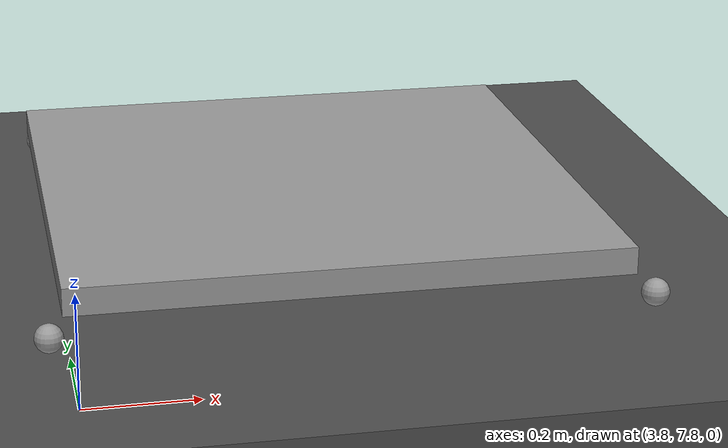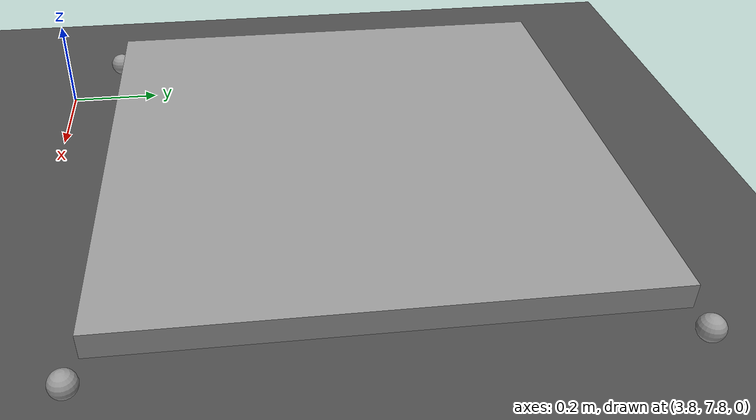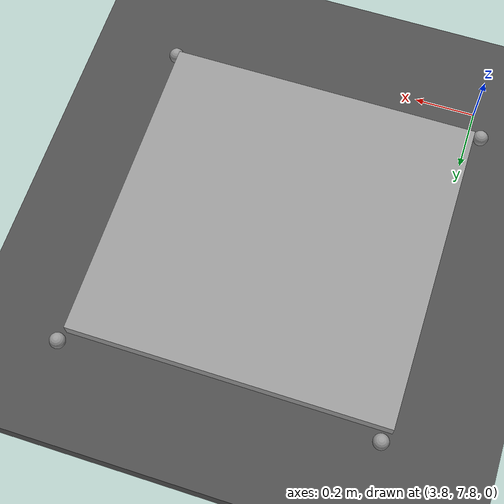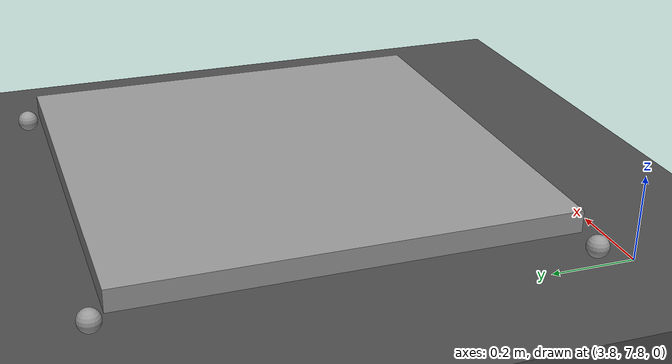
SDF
<sdf version="1.6">
 <world name="default">
  <model name="ground_plane">
   <static>1</static>
   <link name="link">
    <collision name="collision">
     <geometry><plane><normal>0 0 1</normal><size>100 100</size></plane></geometry>
     <surface>
      <contact><collide_bitmask>65535</collide_bitmask></contact>
      <friction><ode><mu>100</mu><mu2>50</mu2></ode></friction>
     </surface>
    </collision>
    <visual name="visual">
     <cast_shadows>0</cast_shadows>
     <geometry><plane><normal>0 0 1</normal><size>100 100</size></plane></geometry>
     <material>
      <script><uri>file://media/materials/scripts/gazebo.material</uri><name>Gazebo/Grey</name></script>
     </material>
    </visual>
   </link>
  </model>
  <model name="dolly_0">
   <link name="link_0">
    <inertial>
     <mass>0.580233</mass>
     <inertia>
      <ixx>0.0485156</ixx>
      <ixy>0</ixy>
      <ixz>0</ixz>
      <iyy>0.0485156</iyy>
      <iyz>0</iyz>
      <izz>0.0967055</izz>
     </inertia>
    </inertial>
    <pose>-0 0 0.05 0 -0 0</pose>
    <visual name="visual">
     <geometry><box><size>1 1 0.05</size></box></geometry>
     <material>
      <lighting>1</lighting>
      <script><uri>file://media/materials/scripts/gazebo.material</uri><name>Gazebo/Grey</name></script>
      <shader type="vertex"><normal_map>__default__</normal_map></shader>
      <ambient>0.3 0.3 0.3 1</ambient>
      <diffuse>0.9 0.9 0.9 1</diffuse>
      <specular>0.08 0.08 0.08 1</specular>
      <emissive>0 0 0 1</emissive>
     </material>
    </visual>
    <collision name="collision">
     <geometry><box><size>1 1 0.05</size></box></geometry>
     <surface>
      <friction>
       <ode><mu>1</mu><mu2>1</mu2><fdir1>0 0 0</fdir1><slip1>0</slip1><slip2>0</slip2></ode>
       <torsional>
        <coefficient>1</coefficient>
        <patch_radius>0</patch_radius>
        <surface_radius>0</surface_radius>
        <use_patch_radius>1</use_patch_radius>
        <ode><slip>0</slip></ode>
       </torsional>
      </friction>
      <bounce><restitution_coefficient>0</restitution_coefficient><threshold>1e+06</threshold></bounce>
      <contact>
       <collide_without_contact>0</collide_without_contact>
       <collide_without_contact_bitmask>1</collide_without_contact_bitmask>
       <collide_bitmask>1</collide_bitmask>
       <ode>
        <soft_cfm>0</soft_cfm>
        <soft_erp>0.2</soft_erp>
        <kp>1e+13</kp>
        <kd>1</kd>
        <max_vel>0.01</max_vel>
        <min_depth>0</min_depth>
       </ode>
       <bullet>
        <split_impulse>1</split_impulse>
        <split_impulse_penetration_threshold>-0.01</split_impulse_penetration_threshold>
        <soft_cfm>0</soft_cfm>
        <soft_erp>0.2</soft_erp>
        <kp>1e+13</kp>
        <kd>1</kd>
       </bullet>
      </contact>
     </surface>
    </collision>
   </link>
   <link name="link_0_0">
    <inertial>
     <mass>1</mass>
     <inertia><ixx>0.1</ixx><ixy>0</ixy><ixz>0</ixz><iyy>0.1</iyy><iyz>0</iyz><izz>0.1</izz></inertia>
    </inertial>
    <pose>-0.475902 0.525156 0 0 -0 0</pose>
    <visual name="visual">
     <geometry><sphere><radius>0.025</radius></sphere></geometry>
     <material>
      <lighting>1</lighting>
      <script><uri>file://media/materials/scripts/gazebo.material</uri><name>Gazebo/Grey</name></script>
      <shader type="vertex"><normal_map>__default__</normal_map></shader>
      <ambient>0.3 0.3 0.3 1</ambient>
      <diffuse>0.7 0.7 0.7 1</diffuse>
      <specular>0.01 0.01 0.01 1</specular>
      <emissive>0 0 0 1</emissive>
     </material>
    </visual>
    <collision name="collision">
     <geometry><sphere><radius>0.025</radius></sphere></geometry>
     <surface>
      <friction>
       <ode><mu>1</mu><mu2>1</mu2><fdir1>0 0 0</fdir1><slip1>0</slip1><slip2>0</slip2></ode>
       <torsional>
        <coefficient>1</coefficient>
        <patch_radius>0</patch_radius>
        <surface_radius>0</surface_radius>
        <use_patch_radius>1</use_patch_radius>
        <ode><slip>0</slip></ode>
       </torsional>
      </friction>
      <bounce><restitution_coefficient>0</restitution_coefficient><threshold>1e+06</threshold></bounce>
      <contact>
       <collide_without_contact>0</collide_without_contact>
       <collide_without_contact_bitmask>1</collide_without_contact_bitmask>
       <collide_bitmask>1</collide_bitmask>
       <ode>
        <soft_cfm>0</soft_cfm>
        <soft_erp>0.2</soft_erp>
        <kp>1e+13</kp>
        <kd>1</kd>
        <max_vel>0.01</max_vel>
        <min_depth>0</min_depth>
       </ode>
       <bullet>
        <split_impulse>1</split_impulse>
        <split_impulse_penetration_threshold>-0.01</split_impulse_penetration_threshold>
        <soft_cfm>0</soft_cfm>
        <soft_erp>0.2</soft_erp>
        <kp>1e+13</kp>
        <kd>1</kd>
       </bullet>
      </contact>
     </surface>
    </collision>
   </link>
   <link name="link_0_0_clone">
    <inertial>
     <mass>1</mass>
     <inertia><ixx>0.1</ixx><ixy>0</ixy><ixz>0</ixz><iyy>0.1</iyy><iyz>0</iyz><izz>0.1</izz></inertia>
    </inertial>
    <pose>0.524976 0.525931 -1.1e-05 3.7e-05 1.2e-05 0.000901</pose>
    <visual name="visual_0">
     <geometry><sphere><radius>0.025</radius></sphere></geometry>
     <material>
      <lighting>1</lighting>
      <script><uri>file://media/materials/scripts/gazebo.material</uri><name>Gazebo/Grey</name></script>
      <shader type="vertex"><normal_map>__default__</normal_map></shader>
      <ambient>0.3 0.3 0.3 1</ambient>
      <diffuse>0.7 0.7 0.7 1</diffuse>
      <specular>0.01 0.01 0.01 1</specular>
      <emissive>0 0 0 1</emissive>
     </material>
    </visual>
    <collision name="collision">
     <geometry><sphere><radius>0.025</radius></sphere></geometry>
     <surface>
      <friction>
       <ode><mu>1</mu><mu2>1</mu2><fdir1>0 0 0</fdir1><slip1>0</slip1><slip2>0</slip2></ode>
       <torsional>
        <coefficient>1</coefficient>
        <patch_radius>0</patch_radius>
        <surface_radius>0</surface_radius>
        <use_patch_radius>1</use_patch_radius>
        <ode><slip>0</slip></ode>
       </torsional>
      </friction>
      <bounce><restitution_coefficient>0</restitution_coefficient><threshold>1e+06</threshold></bounce>
      <contact>
       <collide_without_contact>0</collide_without_contact>
       <collide_without_contact_bitmask>1</collide_without_contact_bitmask>
       <collide_bitmask>1</collide_bitmask>
       <ode>
        <soft_cfm>0</soft_cfm>
        <soft_erp>0.2</soft_erp>
        <kp>1e+13</kp>
        <kd>1</kd>
        <max_vel>0.01</max_vel>
        <min_depth>0</min_depth>
       </ode>
       <bullet>
        <split_impulse>1</split_impulse>
        <split_impulse_penetration_threshold>-0.01</split_impulse_penetration_threshold>
        <soft_cfm>0</soft_cfm>
        <soft_erp>0.2</soft_erp>
        <kp>1e+13</kp>
        <kd>1</kd>
       </bullet>
      </contact>
     </surface>
    </collision>
   </link>
   <link name="link_0_0_clone_clone">
    <inertial>
     <mass>1</mass>
     <inertia><ixx>0.1</ixx><ixy>0</ixy><ixz>0</ixz><iyy>0.1</iyy><iyz>0</iyz><izz>0.1</izz></inertia>
    </inertial>
    <pose>0.525946 -0.524999 -5.1e-05 7.4e-05 2.4e-05 0.001802</pose>
    <visual name="visual_0">
     <geometry><sphere><radius>0.025</radius></sphere></geometry>
     <material>
      <lighting>1</lighting>
      <script><uri>file://media/materials/scripts/gazebo.material</uri><name>Gazebo/Grey</name></script>
      <shader type="vertex"><normal_map>__default__</normal_map></shader>
      <ambient>0.3 0.3 0.3 1</ambient>
      <diffuse>0.7 0.7 0.7 1</diffuse>
      <specular>0.01 0.01 0.01 1</specular>
      <emissive>0 0 0 1</emissive>
     </material>
    </visual>
    <collision name="collision">
     <geometry><sphere><radius>0.025</radius></sphere></geometry>
     <surface>
      <friction>
       <ode><mu>1</mu><mu2>1</mu2><fdir1>0 0 0</fdir1><slip1>0</slip1><slip2>0</slip2></ode>
       <torsional>
        <coefficient>1</coefficient>
        <patch_radius>0</patch_radius>
        <surface_radius>0</surface_radius>
        <use_patch_radius>1</use_patch_radius>
        <ode><slip>0</slip></ode>
       </torsional>
      </friction>
      <bounce><restitution_coefficient>0</restitution_coefficient><threshold>1e+06</threshold></bounce>
      <contact>
       <collide_without_contact>0</collide_without_contact>
       <collide_without_contact_bitmask>1</collide_without_contact_bitmask>
       <collide_bitmask>1</collide_bitmask>
       <ode>
        <soft_cfm>0</soft_cfm>
        <soft_erp>0.2</soft_erp>
        <kp>1e+13</kp>
        <kd>1</kd>
        <max_vel>0.01</max_vel>
        <min_depth>0</min_depth>
       </ode>
       <bullet>
        <split_impulse>1</split_impulse>
        <split_impulse_penetration_threshold>-0.01</split_impulse_penetration_threshold>
        <soft_cfm>0</soft_cfm>
        <soft_erp>0.2</soft_erp>
        <kp>1e+13</kp>
        <kd>1</kd>
       </bullet>
      </contact>
     </surface>
    </collision>
   </link>
   <link name="link_0_0_clone_clone_clone">
    <inertial>
     <mass>1</mass>
     <inertia><ixx>0.1</ixx><ixy>0</ixy><ixz>0</ixz><iyy>0.1</iyy><iyz>0</iyz><izz>0.1</izz></inertia>
    </inertial>
    <pose>-0.525024 -0.52597 -4e-05 0.000111 3.5e-05 0.002703</pose>
    <visual name="visual_0">
     <geometry><sphere><radius>0.025</radius></sphere></geometry>
     <material>
      <lighting>1</lighting>
      <script><uri>file://media/materials/scripts/gazebo.material</uri><name>Gazebo/Grey</name></script>
      <shader type="vertex"><normal_map>__default__</normal_map></shader>
      <ambient>0.3 0.3 0.3 1</ambient>
      <diffuse>0.7 0.7 0.7 1</diffuse>
      <specular>0.01 0.01 0.01 1</specular>
      <emissive>0 0 0 1</emissive>
     </material>
    </visual>
    <collision name="collision">
     <geometry><sphere><radius>0.025</radius></sphere></geometry>
     <surface>
      <friction>
       <ode><mu>1</mu><mu2>1</mu2><fdir1>0 0 0</fdir1><slip1>0</slip1><slip2>0</slip2></ode>
       <torsional>
        <coefficient>1</coefficient>
        <patch_radius>0</patch_radius>
        <surface_radius>0</surface_radius>
        <use_patch_radius>1</use_patch_radius>
        <ode><slip>0</slip></ode>
       </torsional>
      </friction>
      <bounce><restitution_coefficient>0</restitution_coefficient><threshold>1e+06</threshold></bounce>
      <contact>
       <collide_without_contact>0</collide_without_contact>
       <collide_without_contact_bitmask>1</collide_without_contact_bitmask>
       <collide_bitmask>1</collide_bitmask>
       <ode>
        <soft_cfm>0</soft_cfm>
        <soft_erp>0.2</soft_erp>
        <kp>1e+13</kp>
        <kd>1</kd>
        <max_vel>0.01</max_vel>
        <min_depth>0</min_depth>
       </ode>
       <bullet>
        <split_impulse>1</split_impulse>
        <split_impulse_penetration_threshold>-0.01</split_impulse_penetration_threshold>
        <soft_cfm>0</soft_cfm>
        <soft_erp>0.2</soft_erp>
        <kp>1e+13</kp>
        <kd>1</kd>
       </bullet>
      </contact>
     </surface>
    </collision>
   </link>
   <joint name="link_0_JOINT_1" type="ball">
    <parent>link_0</parent>
    <child>link_0_0</child>
    <physics>
     <ode><limit><cfm>0</cfm><erp>0.2</erp></limit><suspension><cfm>0</cfm><erp>0.2</erp></suspension></ode>
    </physics>
   </joint>
   <joint name="link_0_JOINT_2" type="revolute">
    <parent>link_0</parent>
    <child>link_0_0_clone</child>
    <axis>
     <xyz>1 0 0</xyz>
     <use_parent_model_frame>0</use_parent_model_frame>
     <limit>
      <lower>-1.79769e+308</lower>
      <upper>1.79769e+308</upper>
      <effort>-1</effort>
      <velocity>-1</velocity>
     </limit>
     <dynamics>
      <spring_reference>0</spring_reference>
      <spring_stiffness>0</spring_stiffness>
      <damping>0</damping>
     </dynamics>
    </axis>
    <physics>
     <ode><limit><cfm>0</cfm><erp>0.2</erp></limit><suspension><cfm>0</cfm><erp>0.2</erp></suspension></ode>
    </physics>
   </joint>
   <joint name="link_0_JOINT_3" type="revolute">
    <parent>link_0</parent>
    <child>link_0_0_clone_clone</child>
    <axis>
     <xyz>1 0 0</xyz>
     <use_parent_model_frame>0</use_parent_model_frame>
     <limit>
      <lower>-1.79769e+308</lower>
      <upper>1.79769e+308</upper>
      <effort>-1</effort>
      <velocity>-1</velocity>
     </limit>
     <dynamics>
      <spring_reference>0</spring_reference>
      <spring_stiffness>0</spring_stiffness>
      <damping>0</damping>
     </dynamics>
    </axis>
    <physics>
     <ode><limit><cfm>0</cfm><erp>0.2</erp></limit><suspension><cfm>0</cfm><erp>0.2</erp></suspension></ode>
    </physics>
   </joint>
   <joint name="link_0_JOINT_4" type="revolute">
    <parent>link_0</parent>
    <child>link_0_0_clone_clone_clone</child>
    <axis>
     <xyz>1 0 0</xyz>
     <use_parent_model_frame>0</use_parent_model_frame>
     <limit>
      <lower>-1.79769e+308</lower>
      <upper>1.79769e+308</upper>
      <effort>-1</effort>
      <velocity>-1</velocity>
     </limit>
     <dynamics>
      <spring_reference>0</spring_reference>
      <spring_stiffness>0</spring_stiffness>
      <damping>0</damping>
     </dynamics>
    </axis>
    <physics>
     <ode><limit><cfm>0</cfm><erp>0.2</erp></limit><suspension><cfm>0</cfm><erp>0.2</erp></suspension></ode>
    </physics>
   </joint>
   <static>0</static>
   <pose>4.28746 8.44825 0.075018 -4.6e-05 -5e-06 -0.001109</pose>
  </model>
  <model name="asphalt_plane">
   <static>1</static>
   <link name="link">
    <collision name="collision"><geometry><box><size>20 23.3157 0.1</size></box></geometry></collision>
    <visual name="visual">
     <cast_shadows>0</cast_shadows>
     <geometry><box><size>20 23.3157 0.1</size></box></geometry>
     <material>
      <script>
       <uri>model://asphalt_plane/materials/scripts</uri>
       <uri>model://asphalt_plane/materials/textures</uri>
       <name>vrc/asphalt</name>
      </script>
     </material>
    </visual>
   </link>
   <pose>0.082168 -0.989597 0 0 -0 0</pose>
  </model>
 </world>
</sdf>
